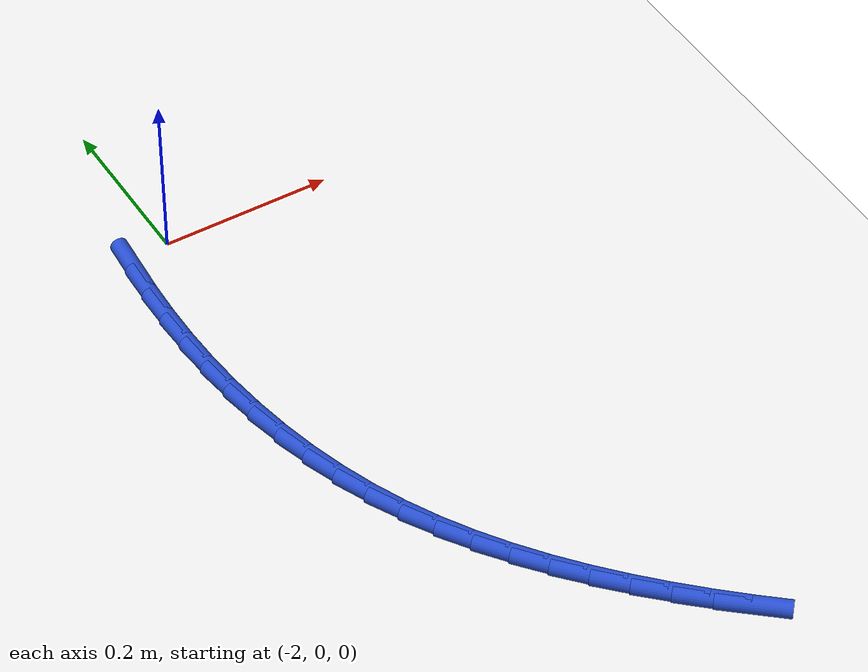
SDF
<sdf version="1.6">
 <world name="default">
  <model name="ground_plane">
   <static>1</static>
   <link name="link">
    <collision name="collision">
     <geometry><plane><normal>0 0 1</normal><size>100 100</size></plane></geometry>
     <surface><friction><ode><mu>100</mu><mu2>50</mu2></ode></friction></surface>
    </collision>
    <visual name="visual">
     <cast_shadows>0</cast_shadows>
     <geometry><plane><normal>0 0 1</normal><size>100 100</size></plane></geometry>
     <material>
      <script><uri>file://media/materials/scripts/gazebo.material</uri><name>Gazebo/WhiteGlow</name></script>
     </material>
    </visual>
   </link>
  </model>
  <model name="line">
   <link name="link_81">
    <pose>-2.0537883834736905 -0.022430115445571715 0.01 0 1.57 1.4990861172074257</pose>
    <collision name="collision">
     <geometry><cylinder><radius>0.01</radius><length>0.08</length></cylinder></geometry>
    </collision>
    <visual name="visual">
     <material>
      <script><name>Gazebo/Blue</name><uri>file://media/materials/scripts/gazebo.material</uri></script>
     </material>
     <geometry><cylinder><radius>0.01</radius><length>0.08</length></cylinder></geometry>
    </visual>
   </link>
   <link name="link_82">
    <pose>-2.0568401989049088 -0.064914755813676 0.01 0 1.57 1.5368931560237917</pose>
    <collision name="collision">
     <geometry><cylinder><radius>0.01</radius><length>0.08</length></cylinder></geometry>
    </collision>
    <visual name="visual">
     <material>
      <script><name>Gazebo/Blue</name><uri>file://media/materials/scripts/gazebo.material</uri></script>
     </material>
     <geometry><cylinder><radius>0.01</radius><length>0.08</length></cylinder></geometry>
    </visual>
   </link>
   <link name="link_83">
    <pose>-2.058286465603844 -0.10755715469730551 0.01 0 1.57 -1.5651589048027394</pose>
    <collision name="collision">
     <geometry><cylinder><radius>0.01</radius><length>0.08</length></cylinder></geometry>
    </collision>
    <visual name="visual">
     <material>
      <script><name>Gazebo/Blue</name><uri>file://media/materials/scripts/gazebo.material</uri></script>
     </material>
     <geometry><cylinder><radius>0.01</radius><length>0.08</length></cylinder></geometry>
    </visual>
   </link>
   <link name="link_84">
    <pose>-2.0580459409547287 -0.15022241932441924 0.01 0 1.57 -1.523630257499338</pose>
    <collision name="collision">
     <geometry><cylinder><radius>0.01</radius><length>0.08</length></cylinder></geometry>
    </collision>
    <visual name="visual">
     <material>
      <script><name>Gazebo/Blue</name><uri>file://media/materials/scripts/gazebo.material</uri></script>
     </material>
     <geometry><cylinder><radius>0.01</radius><length>0.08</length></cylinder></geometry>
    </visual>
   </link>
   <link name="link_85">
    <pose>-2.0560373823417932 -0.1927756569229756 0.01 0 1.57 -1.4798596668916062</pose>
    <collision name="collision">
     <geometry><cylinder><radius>0.01</radius><length>0.08</length></cylinder></geometry>
    </collision>
    <visual name="visual">
     <material>
      <script><name>Gazebo/Blue</name><uri>file://media/materials/scripts/gazebo.material</uri></script>
     </material>
     <geometry><cylinder><radius>0.01</radius><length>0.08</length></cylinder></geometry>
    </visual>
   </link>
   <link name="link_86">
    <pose>-2.0521795471492683 -0.23508197472093287 0.01 0 1.57 -1.4335975769318752</pose>
    <collision name="collision">
     <geometry><cylinder><radius>0.01</radius><length>0.08</length></cylinder></geometry>
    </collision>
    <visual name="visual">
     <material>
      <script><name>Gazebo/Blue</name><uri>file://media/materials/scripts/gazebo.material</uri></script>
     </material>
     <geometry><cylinder><radius>0.01</radius><length>0.08</length></cylinder></geometry>
    </visual>
   </link>
   <link name="link_87">
    <pose>-2.0463911927613845 -0.27700647994625 0.01 0 1.57 -1.3846050494945537</pose>
    <collision name="collision">
     <geometry><cylinder><radius>0.01</radius><length>0.08</length></cylinder></geometry>
    </collision>
    <visual name="visual">
     <material>
      <script><name>Gazebo/Blue</name><uri>file://media/materials/scripts/gazebo.material</uri></script>
     </material>
     <geometry><cylinder><radius>0.01</radius><length>0.08</length></cylinder></geometry>
    </visual>
   </link>
   <link name="link_88">
    <pose>-2.038591076562373 -0.3184142798268838 0.01 0 1.57 -1.3326631121783619</pose>
    <collision name="collision">
     <geometry><cylinder><radius>0.01</radius><length>0.08</length></cylinder></geometry>
    </collision>
    <visual name="visual">
     <material>
      <script><name>Gazebo/Blue</name><uri>file://media/materials/scripts/gazebo.material</uri></script>
     </material>
     <geometry><cylinder><radius>0.01</radius><length>0.08</length></cylinder></geometry>
    </visual>
   </link>
   <link name="link_89">
    <pose>-2.0286979559364644 -0.3591704815907935 0.01 0 1.57 -1.2775855872405169</pose>
    <collision name="collision">
     <geometry><cylinder><radius>0.01</radius><length>0.08</length></cylinder></geometry>
    </collision>
    <visual name="visual">
     <material>
      <script><name>Gazebo/Blue</name><uri>file://media/materials/scripts/gazebo.material</uri></script>
     </material>
     <geometry><cylinder><radius>0.01</radius><length>0.08</length></cylinder></geometry>
    </visual>
   </link>
   <link name="link_90">
    <pose>-2.01663058826789 -0.39914019246593707 0.01 0 1.57 -1.2192355656677247</pose>
    <collision name="collision">
     <geometry><cylinder><radius>0.01</radius><length>0.08</length></cylinder></geometry>
    </collision>
    <visual name="visual">
     <material>
      <script><name>Gazebo/Blue</name><uri>file://media/materials/scripts/gazebo.material</uri></script>
     </material>
     <geometry><cylinder><radius>0.01</radius><length>0.08</length></cylinder></geometry>
    </visual>
   </link>
   <link name="link_91">
    <pose>-2.0023077309408803 -0.43818851968027317 0.01 0 1.57 -1.157545339896744</pose>
    <collision name="collision">
     <geometry><cylinder><radius>0.01</radius><length>0.08</length></cylinder></geometry>
    </collision>
    <visual name="visual">
     <material>
      <script><name>Gazebo/Blue</name><uri>file://media/materials/scripts/gazebo.material</uri></script>
     </material>
     <geometry><cylinder><radius>0.01</radius><length>0.08</length></cylinder></geometry>
    </visual>
   </link>
   <link name="link_92">
    <pose>-1.985648146938919 -0.4761805735752394 0.01 0 1.57 -1.0940180308107668</pose>
    <collision name="collision">
     <geometry><cylinder><radius>0.01</radius><length>0.08</length></cylinder></geometry>
    </collision>
    <visual name="visual">
     <material>
      <script><name>Gazebo/Blue</name><uri>file://media/materials/scripts/gazebo.material</uri></script>
     </material>
     <geometry><cylinder><radius>0.01</radius><length>0.08</length></cylinder></geometry>
    </visual>
   </link>
   <link name="link_93">
    <pose>-1.966624241449396 -0.5130112923770903 0.01 0 1.57 -1.0338806200314359</pose>
    <collision name="collision">
     <geometry><cylinder><radius>0.01</radius><length>0.08</length></cylinder></geometry>
    </collision>
    <visual name="visual">
     <material>
      <script><name>Gazebo/Blue</name><uri>file://media/materials/scripts/gazebo.material</uri></script>
     </material>
     <geometry><cylinder><radius>0.01</radius><length>0.08</length></cylinder></geometry>
    </visual>
   </link>
   <link name="link_94">
    <pose>-1.9453935028908047 -0.5486785303165931 0.01 0 1.57 -0.9783086299158573</pose>
    <collision name="collision">
     <geometry><cylinder><radius>0.01</radius><length>0.08</length></cylinder></geometry>
    </collision>
    <visual name="visual">
     <material>
      <script><name>Gazebo/Blue</name><uri>file://media/materials/scripts/gazebo.material</uri></script>
     </material>
     <geometry><cylinder><radius>0.01</radius><length>0.08</length></cylinder></geometry>
    </visual>
   </link>
   <link name="link_95">
    <pose>-1.922153308334736 -0.5832023218121927 0.01 0 1.57 -0.9272571092608342</pose>
    <collision name="collision">
     <geometry><cylinder><radius>0.01</radius><length>0.08</length></cylinder></geometry>
    </collision>
    <visual name="visual">
     <material>
      <script><name>Gazebo/Blue</name><uri>file://media/materials/scripts/gazebo.material</uri></script>
     </material>
     <geometry><cylinder><radius>0.01</radius><length>0.08</length></cylinder></geometry>
    </visual>
   </link>
   <link name="link_96">
    <pose>-1.8971010348527781 -0.616602701282335 0.01 0 1.57 -0.8805920480467764</pose>
    <collision name="collision">
     <geometry><cylinder><radius>0.01</radius><length>0.08</length></cylinder></geometry>
    </collision>
    <visual name="visual">
     <material>
      <script><name>Gazebo/Blue</name><uri>file://media/materials/scripts/gazebo.material</uri></script>
     </material>
     <geometry><cylinder><radius>0.01</radius><length>0.08</length></cylinder></geometry>
    </visual>
   </link>
   <link name="link_97">
    <pose>-1.8704340595165232 -0.6488997031454636 0.01 0 1.57 -0.838122714736879</pose>
    <collision name="collision">
     <geometry><cylinder><radius>0.01</radius><length>0.08</length></cylinder></geometry>
    </collision>
    <visual name="visual">
     <material>
      <script><name>Gazebo/Blue</name><uri>file://media/materials/scripts/gazebo.material</uri></script>
     </material>
     <geometry><cylinder><radius>0.01</radius><length>0.08</length></cylinder></geometry>
    </visual>
   </link>
   <link name="link_98">
    <pose>-1.842349759397561 -0.680113361820025 0.01 0 1.57 -0.7996282649391596</pose>
    <collision name="collision">
     <geometry><cylinder><radius>0.01</radius><length>0.08</length></cylinder></geometry>
    </collision>
    <visual name="visual">
     <material>
      <script><name>Gazebo/Blue</name><uri>file://media/materials/scripts/gazebo.material</uri></script>
     </material>
     <geometry><cylinder><radius>0.01</radius><length>0.08</length></cylinder></geometry>
    </visual>
   </link>
   <link name="link_99">
    <pose>-1.8130455115674802 -0.7102637117244633 0.01 0 1.57 -0.7648783617556604</pose>
    <collision name="collision">
     <geometry><cylinder><radius>0.01</radius><length>0.08</length></cylinder></geometry>
    </collision>
    <visual name="visual">
     <material>
      <script><name>Gazebo/Blue</name><uri>file://media/materials/scripts/gazebo.material</uri></script>
     </material>
     <geometry><cylinder><radius>0.01</radius><length>0.08</length></cylinder></geometry>
    </visual>
   </link>
   <link name="link_100">
    <pose>-1.7827186930978725 -0.7393707872772244 0.01 0 1.57 -0.7336484685806012</pose>
    <collision name="collision">
     <geometry><cylinder><radius>0.01</radius><length>0.08</length></cylinder></geometry>
    </collision>
    <visual name="visual">
     <material>
      <script><name>Gazebo/Blue</name><uri>file://media/materials/scripts/gazebo.material</uri></script>
     </material>
     <geometry><cylinder><radius>0.01</radius><length>0.08</length></cylinder></geometry>
    </visual>
   </link>
   <link name="link_101">
    <pose>-1.7515666810603268 -0.7674546228967536 0.01 0 1.57 -0.7057208620230624</pose>
    <collision name="collision">
     <geometry><cylinder><radius>0.01</radius><length>0.08</length></cylinder></geometry>
    </collision>
    <visual name="visual">
     <material>
      <script><name>Gazebo/Blue</name><uri>file://media/materials/scripts/gazebo.material</uri></script>
     </material>
     <geometry><cylinder><radius>0.01</radius><length>0.08</length></cylinder></geometry>
    </visual>
   </link>
  </model>
 </world>
</sdf>
